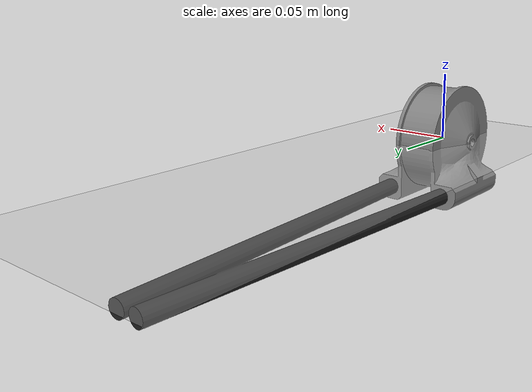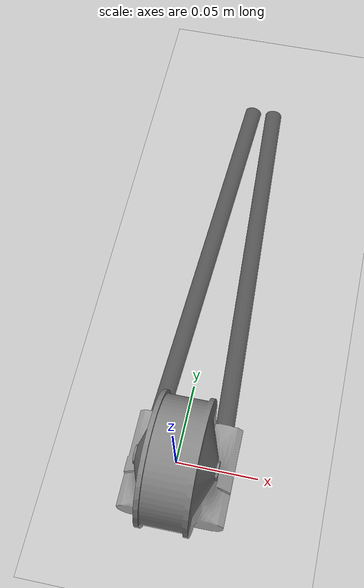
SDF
<?xml version="1.0"?>
<!-- Helpful viewer, edit mesh location below and run directly as "gazebo viewmesh.world" to inspect one of the meshes -->
<sdf version="1.6">
  <world name="default">
    <include>
      <uri>model://ground_plane</uri>
    </include>
    <include>
      <uri>model://sun</uri>
    </include>
    <model name="dogbotmesh">
      <pose>0 0 0  0 0 0</pose>
      <static>true</static>
      <link name="body">
        <visual name="visual">
          <geometry>
            <mesh>
              <uri>file://LegLower_nofoot.dae</uri>
            </mesh>
          </geometry>
        </visual>
        <inertial>
          <mass>2.0</mass>
          <inertia><ixx>1.0</ixx><ixy>0.0</ixy><ixz>0.0</ixz><iyy>1.0</iyy><iyz>0.0</iyz><izz>1.0</izz></inertia>
        </inertial>
      </link>
    </model>
  </world>
</sdf>
